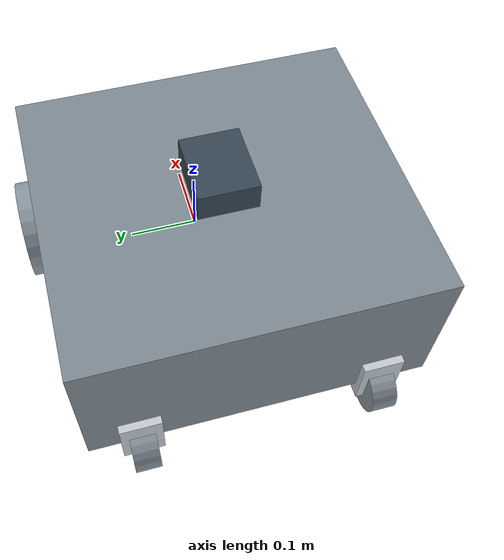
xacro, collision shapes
<?xml version='1.0' encoding='utf-8'?>
<robot xmlns:xacro="http://www.ros.org/wiki/xacro" name="oh_my_mobilerobot">
  <!--Generated by tools/generate_ros_description.py; SPDX-License-Identifier: CERN-OHL-P-2.0-->
  <xacro:arg name="variant" default="base" />
  <xacro:arg name="prefix" default="" />
  <xacro:property name="variant" value="$(arg variant)" />
  <xacro:property name="prefix" value="$(arg prefix)" />
  <material name="${prefix}color_accent">
    <color rgba="0.462745098 0.537254902 0.5803921569 1" />
  </material>
  <material name="${prefix}color_arm">
    <color rgba="0.737254902 0.7647058824 0.7843137255 1" />
  </material>
  <material name="${prefix}color_bracket">
    <color rgba="0.4941176471 0.537254902 0.5764705882 1" />
  </material>
  <material name="${prefix}color_cover">
    <color rgba="0.3490196078 0.3803921569 0.4196078431 1" />
  </material>
  <material name="${prefix}color_deck">
    <color rgba="0.3843137255 0.4235294118 0.462745098 1" />
  </material>
  <material name="${prefix}color_display">
    <color rgba="0.2705882353 0.3176470588 0.3647058824 1" />
  </material>
  <material name="${prefix}color_fastener">
    <color rgba="0.7647058824 0.7921568627 0.8156862745 1" />
  </material>
  <material name="${prefix}color_hub">
    <color rgba="0.5490196078 0.5960784314 0.6352941176 1" />
  </material>
  <material name="${prefix}color_joint">
    <color rgba="0.262745098 0.3058823529 0.3490196078 1" />
  </material>
  <material name="${prefix}color_metal">
    <color rgba="0.7333333333 0.7607843137 0.7843137255 1" />
  </material>
  <material name="${prefix}color_optic">
    <color rgba="0.2039215686 0.2745098039 0.3215686275 1" />
  </material>
  <material name="${prefix}color_rubber">
    <color rgba="0.2117647059 0.2392156863 0.2705882353 1" />
  </material>
  <material name="${prefix}color_screen">
    <color rgba="0.2078431373 0.2862745098 0.3411764706 1" />
  </material>
  <material name="${prefix}color_screen_card">
    <color rgba="0.3960784314 0.4745098039 0.5176470588 1" />
  </material>
  <material name="${prefix}color_screen_text">
    <color rgba="0.8823529412 0.9058823529 0.9215686275 1" />
  </material>
  <material name="${prefix}color_sensor">
    <color rgba="0.3254901961 0.3764705882 0.4235294118 1" />
  </material>
  <link name="${prefix}base_footprint" />
  <link name="${prefix}base_link">
    <visual name="${prefix}base_link_bracket">
      <geometry>
        <mesh filename="package://oh_my_mobilerobot_description/meshes/visual/base_link/bracket.stl" scale="1 1 1" />
      </geometry>
      <material name="${prefix}color_bracket" />
    </visual>
    <visual name="${prefix}base_link_cover">
      <geometry>
        <mesh filename="package://oh_my_mobilerobot_description/meshes/visual/base_link/cover.stl" scale="1 1 1" />
      </geometry>
      <material name="${prefix}color_cover" />
    </visual>
    <visual name="${prefix}base_link_deck">
      <geometry>
        <mesh filename="package://oh_my_mobilerobot_description/meshes/visual/base_link/deck.stl" scale="1 1 1" />
      </geometry>
      <material name="${prefix}color_deck" />
    </visual>
    <visual name="${prefix}base_link_fastener">
      <geometry>
        <mesh filename="package://oh_my_mobilerobot_description/meshes/visual/base_link/fastener.stl" scale="1 1 1" />
      </geometry>
      <material name="${prefix}color_fastener" />
    </visual>
    <visual name="${prefix}base_link_joint">
      <geometry>
        <mesh filename="package://oh_my_mobilerobot_description/meshes/visual/base_link/joint.stl" scale="1 1 1" />
      </geometry>
      <material name="${prefix}color_joint" />
    </visual>
    <visual name="${prefix}base_link_metal">
      <geometry>
        <mesh filename="package://oh_my_mobilerobot_description/meshes/visual/base_link/metal.stl" scale="1 1 1" />
      </geometry>
      <material name="${prefix}color_metal" />
    </visual>
    <collision>
      <geometry>
        <box size="0.406 0.446 0.2" />
      </geometry>
      <origin xyz="-0.14 0 0.046" rpy="0 0 0" />
    </collision>
  </link>
  <link name="${prefix}left_wheel_link">
    <visual name="${prefix}left_wheel_link_hub">
      <geometry>
        <mesh filename="package://oh_my_mobilerobot_description/meshes/visual/left_wheel_link/hub.stl" scale="1 1 1" />
      </geometry>
      <material name="${prefix}color_hub" />
    </visual>
    <visual name="${prefix}left_wheel_link_metal">
      <geometry>
        <mesh filename="package://oh_my_mobilerobot_description/meshes/visual/left_wheel_link/metal.stl" scale="1 1 1" />
      </geometry>
      <material name="${prefix}color_metal" />
    </visual>
    <visual name="${prefix}left_wheel_link_rubber">
      <geometry>
        <mesh filename="package://oh_my_mobilerobot_description/meshes/visual/left_wheel_link/rubber.stl" scale="1 1 1" />
      </geometry>
      <material name="${prefix}color_rubber" />
    </visual>
    <collision>
      <geometry>
        <cylinder radius="0.068" length="0.024" />
      </geometry>
      <origin xyz="0 0 0" rpy="1.570796327 0 0" />
    </collision>
  </link>
  <link name="${prefix}right_wheel_link">
    <visual name="${prefix}right_wheel_link_hub">
      <geometry>
        <mesh filename="package://oh_my_mobilerobot_description/meshes/visual/right_wheel_link/hub.stl" scale="1 1 1" />
      </geometry>
      <material name="${prefix}color_hub" />
    </visual>
    <visual name="${prefix}right_wheel_link_metal">
      <geometry>
        <mesh filename="package://oh_my_mobilerobot_description/meshes/visual/right_wheel_link/metal.stl" scale="1 1 1" />
      </geometry>
      <material name="${prefix}color_metal" />
    </visual>
    <visual name="${prefix}right_wheel_link_rubber">
      <geometry>
        <mesh filename="package://oh_my_mobilerobot_description/meshes/visual/right_wheel_link/rubber.stl" scale="1 1 1" />
      </geometry>
      <material name="${prefix}color_rubber" />
    </visual>
    <collision>
      <geometry>
        <cylinder radius="0.068" length="0.024" />
      </geometry>
      <origin xyz="0 0 0" rpy="1.570796327 0 0" />
    </collision>
  </link>
  <link name="${prefix}left_caster_swivel_link">
    <visual name="${prefix}left_caster_swivel_link_fastener">
      <geometry>
        <mesh filename="package://oh_my_mobilerobot_description/meshes/visual/left_caster_swivel_link/fastener.stl" scale="1 1 1" />
      </geometry>
      <material name="${prefix}color_fastener" />
    </visual>
    <visual name="${prefix}left_caster_swivel_link_metal">
      <geometry>
        <mesh filename="package://oh_my_mobilerobot_description/meshes/visual/left_caster_swivel_link/metal.stl" scale="1 1 1" />
      </geometry>
      <material name="${prefix}color_metal" />
    </visual>
    <collision>
      <geometry>
        <box size="0.0715 0.053 0.075" />
      </geometry>
      <origin xyz="-0.00925 0 -0.0375" rpy="0 0 0" />
    </collision>
  </link>
  <link name="${prefix}right_caster_swivel_link">
    <visual name="${prefix}right_caster_swivel_link_fastener">
      <geometry>
        <mesh filename="package://oh_my_mobilerobot_description/meshes/visual/right_caster_swivel_link/fastener.stl" scale="1 1 1" />
      </geometry>
      <material name="${prefix}color_fastener" />
    </visual>
    <visual name="${prefix}right_caster_swivel_link_metal">
      <geometry>
        <mesh filename="package://oh_my_mobilerobot_description/meshes/visual/right_caster_swivel_link/metal.stl" scale="1 1 1" />
      </geometry>
      <material name="${prefix}color_metal" />
    </visual>
    <collision>
      <geometry>
        <box size="0.0715 0.053 0.075" />
      </geometry>
      <origin xyz="-0.00925 0 -0.0375" rpy="0 0 0" />
    </collision>
  </link>
  <link name="${prefix}left_caster_wheel_link">
    <visual name="${prefix}left_caster_wheel_link_hub">
      <geometry>
        <mesh filename="package://oh_my_mobilerobot_description/meshes/visual/left_caster_wheel_link/hub.stl" scale="1 1 1" />
      </geometry>
      <material name="${prefix}color_hub" />
    </visual>
    <visual name="${prefix}left_caster_wheel_link_rubber">
      <geometry>
        <mesh filename="package://oh_my_mobilerobot_description/meshes/visual/left_caster_wheel_link/rubber.stl" scale="1 1 1" />
      </geometry>
      <material name="${prefix}color_rubber" />
    </visual>
    <collision>
      <geometry>
        <cylinder radius="0.038" length="0.033" />
      </geometry>
      <origin xyz="0 0 0" rpy="1.570796327 0 0" />
    </collision>
  </link>
  <link name="${prefix}right_caster_wheel_link">
    <visual name="${prefix}right_caster_wheel_link_hub">
      <geometry>
        <mesh filename="package://oh_my_mobilerobot_description/meshes/visual/right_caster_wheel_link/hub.stl" scale="1 1 1" />
      </geometry>
      <material name="${prefix}color_hub" />
    </visual>
    <visual name="${prefix}right_caster_wheel_link_rubber">
      <geometry>
        <mesh filename="package://oh_my_mobilerobot_description/meshes/visual/right_caster_wheel_link/rubber.stl" scale="1 1 1" />
      </geometry>
      <material name="${prefix}color_rubber" />
    </visual>
    <collision>
      <geometry>
        <cylinder radius="0.038" length="0.033" />
      </geometry>
      <origin xyz="0 0 0" rpy="1.570796327 0 0" />
    </collision>
  </link>
  <link name="${prefix}lidar_link">
    <visual name="${prefix}lidar_link_optic">
      <geometry>
        <mesh filename="package://oh_my_mobilerobot_description/meshes/visual/lidar_link/optic.stl" scale="1 1 1" />
      </geometry>
      <material name="${prefix}color_optic" />
    </visual>
    <visual name="${prefix}lidar_link_rubber">
      <geometry>
        <mesh filename="package://oh_my_mobilerobot_description/meshes/visual/lidar_link/rubber.stl" scale="1 1 1" />
      </geometry>
      <material name="${prefix}color_rubber" />
    </visual>
    <visual name="${prefix}lidar_link_sensor">
      <geometry>
        <mesh filename="package://oh_my_mobilerobot_description/meshes/visual/lidar_link/sensor.stl" scale="1 1 1" />
      </geometry>
      <material name="${prefix}color_sensor" />
    </visual>
    <collision>
      <geometry>
        <box size="0.09399897908 0.07598632342 0.062" />
      </geometry>
      <origin xyz="0.009000510459 0 0.01" rpy="0 0 0" />
    </collision>
  </link>
  <link name="${prefix}camera_link">
    <visual name="${prefix}camera_link_optic">
      <geometry>
        <mesh filename="package://oh_my_mobilerobot_description/meshes/visual/camera_link/optic.stl" scale="1 1 1" />
      </geometry>
      <material name="${prefix}color_optic" />
    </visual>
    <visual name="${prefix}camera_link_rubber">
      <geometry>
        <mesh filename="package://oh_my_mobilerobot_description/meshes/visual/camera_link/rubber.stl" scale="1 1 1" />
      </geometry>
      <material name="${prefix}color_rubber" />
    </visual>
    <visual name="${prefix}camera_link_sensor">
      <geometry>
        <mesh filename="package://oh_my_mobilerobot_description/meshes/visual/camera_link/sensor.stl" scale="1 1 1" />
      </geometry>
      <material name="${prefix}color_sensor" />
    </visual>
    <collision>
      <geometry>
        <box size="0.06811 0.1675 0.025" />
      </geometry>
      <origin xyz="-0.033995 0.03875 0" rpy="0 0 0" />
    </collision>
  </link>
  <link name="${prefix}laser_frame" />
  <link name="${prefix}camera_optical_frame" />
  <joint name="${prefix}base_footprint_joint" type="fixed">
    <parent link="${prefix}base_footprint" />
    <child link="${prefix}base_link" />
    <origin xyz="0 0 0.101" rpy="0 0 0" />
  </joint>
  <joint name="${prefix}left_wheel_joint" type="continuous">
    <parent link="${prefix}base_link" />
    <child link="${prefix}left_wheel_link" />
    <origin xyz="0 0.24 -0.033" rpy="0 0 0" />
    <axis xyz="0 1 0" />
  </joint>
  <joint name="${prefix}left_caster_swivel_joint" type="continuous">
    <parent link="${prefix}base_link" />
    <child link="${prefix}left_caster_swivel_link" />
    <origin xyz="-0.30775 0.155 0" rpy="0 0 0" />
    <axis xyz="0 0 1" />
  </joint>
  <joint name="${prefix}left_caster_wheel_joint" type="continuous">
    <parent link="${prefix}left_caster_swivel_link" />
    <child link="${prefix}left_caster_wheel_link" />
    <origin xyz="-0.034 0 -0.063" rpy="0 0 0" />
    <axis xyz="0 1 0" />
  </joint>
  <joint name="${prefix}right_wheel_joint" type="continuous">
    <parent link="${prefix}base_link" />
    <child link="${prefix}right_wheel_link" />
    <origin xyz="0 -0.24 -0.033" rpy="0 0 0" />
    <axis xyz="0 1 0" />
  </joint>
  <joint name="${prefix}right_caster_swivel_joint" type="continuous">
    <parent link="${prefix}base_link" />
    <child link="${prefix}right_caster_swivel_link" />
    <origin xyz="-0.30775 -0.155 0" rpy="0 0 0" />
    <axis xyz="0 0 1" />
  </joint>
  <joint name="${prefix}right_caster_wheel_joint" type="continuous">
    <parent link="${prefix}right_caster_swivel_link" />
    <child link="${prefix}right_caster_wheel_link" />
    <origin xyz="-0.034 0 -0.063" rpy="0 0 0" />
    <axis xyz="0 1 0" />
  </joint>
  <joint name="${prefix}lidar_joint" type="fixed">
    <parent link="${prefix}base_link" />
    <child link="${prefix}lidar_link" />
    <origin xyz="-0.14 0 0.143" rpy="0 0 0" />
  </joint>
  <joint name="${prefix}laser_frame_joint" type="fixed">
    <parent link="${prefix}lidar_link" />
    <child link="${prefix}laser_frame" />
    <origin xyz="0 0 0.0303" rpy="0 0 0" />
  </joint>
  <joint name="${prefix}camera_joint" type="fixed">
    <parent link="${prefix}base_link" />
    <child link="${prefix}camera_link" />
    <origin xyz="0.06505 0 0.1035" rpy="0 0 0" />
  </joint>
  <joint name="${prefix}camera_optical_joint" type="fixed">
    <parent link="${prefix}camera_link" />
    <child link="${prefix}camera_optical_frame" />
    <origin xyz="0 0 0" rpy="-1.570796327 0 -1.570796327" />
  </joint>
  <xacro:if value="${variant == 'cargo'}">
    <link name="${prefix}module_link">
      <visual name="${prefix}module_link_bracket">
        <geometry>
          <mesh filename="package://oh_my_mobilerobot_description/meshes/visual/cargo_module/bracket.stl" scale="1 1 1" />
        </geometry>
        <material name="${prefix}color_bracket" />
      </visual>
      <visual name="${prefix}module_link_cover">
        <geometry>
          <mesh filename="package://oh_my_mobilerobot_description/meshes/visual/cargo_module/cover.stl" scale="1 1 1" />
        </geometry>
        <material name="${prefix}color_cover" />
      </visual>
      <visual name="${prefix}module_link_deck">
        <geometry>
          <mesh filename="package://oh_my_mobilerobot_description/meshes/visual/cargo_module/deck.stl" scale="1 1 1" />
        </geometry>
        <material name="${prefix}color_deck" />
      </visual>
      <visual name="${prefix}module_link_fastener">
        <geometry>
          <mesh filename="package://oh_my_mobilerobot_description/meshes/visual/cargo_module/fastener.stl" scale="1 1 1" />
        </geometry>
        <material name="${prefix}color_fastener" />
      </visual>
      <visual name="${prefix}module_link_hub">
        <geometry>
          <mesh filename="package://oh_my_mobilerobot_description/meshes/visual/cargo_module/hub.stl" scale="1 1 1" />
        </geometry>
        <material name="${prefix}color_hub" />
      </visual>
      <visual name="${prefix}module_link_metal">
        <geometry>
          <mesh filename="package://oh_my_mobilerobot_description/meshes/visual/cargo_module/metal.stl" scale="1 1 1" />
        </geometry>
        <material name="${prefix}color_metal" />
      </visual>
    </link>
    <joint name="${prefix}module_joint" type="fixed">
      <parent link="${prefix}base_link" />
      <child link="${prefix}module_link" />
      <origin xyz="-0.14 0 0.143" rpy="0 0 0" />
    </joint>
  </xacro:if>
  <xacro:if value="${variant == 'arm'}">
    <link name="${prefix}module_link">
      <visual name="${prefix}module_link_accent">
        <geometry>
          <mesh filename="package://oh_my_mobilerobot_description/meshes/visual/arm_module/accent.stl" scale="1 1 1" />
        </geometry>
        <material name="${prefix}color_accent" />
      </visual>
      <visual name="${prefix}module_link_arm">
        <geometry>
          <mesh filename="package://oh_my_mobilerobot_description/meshes/visual/arm_module/arm.stl" scale="1 1 1" />
        </geometry>
        <material name="${prefix}color_arm" />
      </visual>
      <visual name="${prefix}module_link_bracket">
        <geometry>
          <mesh filename="package://oh_my_mobilerobot_description/meshes/visual/arm_module/bracket.stl" scale="1 1 1" />
        </geometry>
        <material name="${prefix}color_bracket" />
      </visual>
      <visual name="${prefix}module_link_deck">
        <geometry>
          <mesh filename="package://oh_my_mobilerobot_description/meshes/visual/arm_module/deck.stl" scale="1 1 1" />
        </geometry>
        <material name="${prefix}color_deck" />
      </visual>
      <visual name="${prefix}module_link_fastener">
        <geometry>
          <mesh filename="package://oh_my_mobilerobot_description/meshes/visual/arm_module/fastener.stl" scale="1 1 1" />
        </geometry>
        <material name="${prefix}color_fastener" />
      </visual>
      <visual name="${prefix}module_link_joint">
        <geometry>
          <mesh filename="package://oh_my_mobilerobot_description/meshes/visual/arm_module/joint.stl" scale="1 1 1" />
        </geometry>
        <material name="${prefix}color_joint" />
      </visual>
      <visual name="${prefix}module_link_metal">
        <geometry>
          <mesh filename="package://oh_my_mobilerobot_description/meshes/visual/arm_module/metal.stl" scale="1 1 1" />
        </geometry>
        <material name="${prefix}color_metal" />
      </visual>
    </link>
    <joint name="${prefix}module_joint" type="fixed">
      <parent link="${prefix}base_link" />
      <child link="${prefix}module_link" />
      <origin xyz="-0.14 0 0.143" rpy="0 0 0" />
    </joint>
  </xacro:if>
  <xacro:if value="${variant == 'display'}">
    <link name="${prefix}module_link">
      <visual name="${prefix}module_link_bracket">
        <geometry>
          <mesh filename="package://oh_my_mobilerobot_description/meshes/visual/display_module/bracket.stl" scale="1 1 1" />
        </geometry>
        <material name="${prefix}color_bracket" />
      </visual>
      <visual name="${prefix}module_link_deck">
        <geometry>
          <mesh filename="package://oh_my_mobilerobot_description/meshes/visual/display_module/deck.stl" scale="1 1 1" />
        </geometry>
        <material name="${prefix}color_deck" />
      </visual>
      <visual name="${prefix}module_link_display">
        <geometry>
          <mesh filename="package://oh_my_mobilerobot_description/meshes/visual/display_module/display.stl" scale="1 1 1" />
        </geometry>
        <material name="${prefix}color_display" />
      </visual>
      <visual name="${prefix}module_link_fastener">
        <geometry>
          <mesh filename="package://oh_my_mobilerobot_description/meshes/visual/display_module/fastener.stl" scale="1 1 1" />
        </geometry>
        <material name="${prefix}color_fastener" />
      </visual>
      <visual name="${prefix}module_link_metal">
        <geometry>
          <mesh filename="package://oh_my_mobilerobot_description/meshes/visual/display_module/metal.stl" scale="1 1 1" />
        </geometry>
        <material name="${prefix}color_metal" />
      </visual>
      <visual name="${prefix}module_link_screen">
        <geometry>
          <mesh filename="package://oh_my_mobilerobot_description/meshes/visual/display_module/screen.stl" scale="1 1 1" />
        </geometry>
        <material name="${prefix}color_screen" />
      </visual>
      <visual name="${prefix}module_link_screen_card">
        <geometry>
          <mesh filename="package://oh_my_mobilerobot_description/meshes/visual/display_module/screen_card.stl" scale="1 1 1" />
        </geometry>
        <material name="${prefix}color_screen_card" />
      </visual>
      <visual name="${prefix}module_link_screen_text">
        <geometry>
          <mesh filename="package://oh_my_mobilerobot_description/meshes/visual/display_module/screen_text.stl" scale="1 1 1" />
        </geometry>
        <material name="${prefix}color_screen_text" />
      </visual>
    </link>
    <joint name="${prefix}module_joint" type="fixed">
      <parent link="${prefix}base_link" />
      <child link="${prefix}module_link" />
      <origin xyz="-0.14 0 0.143" rpy="0 0 0" />
    </joint>
  </xacro:if>
</robot>
